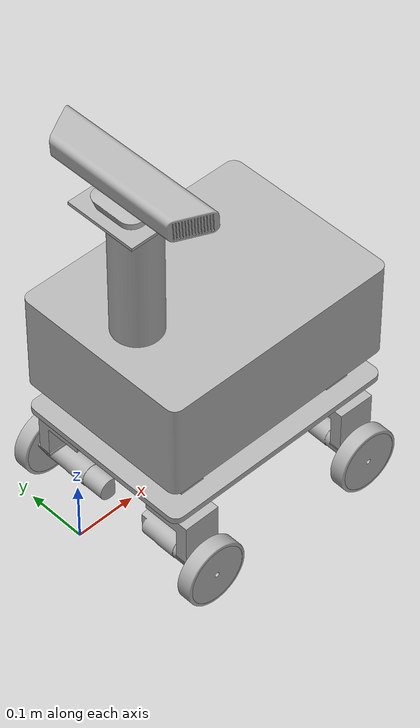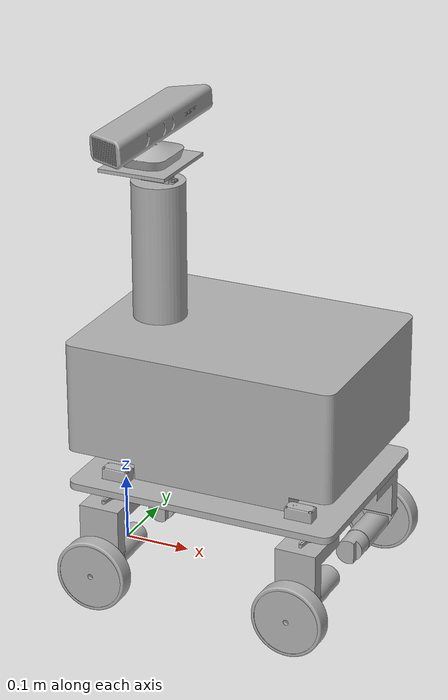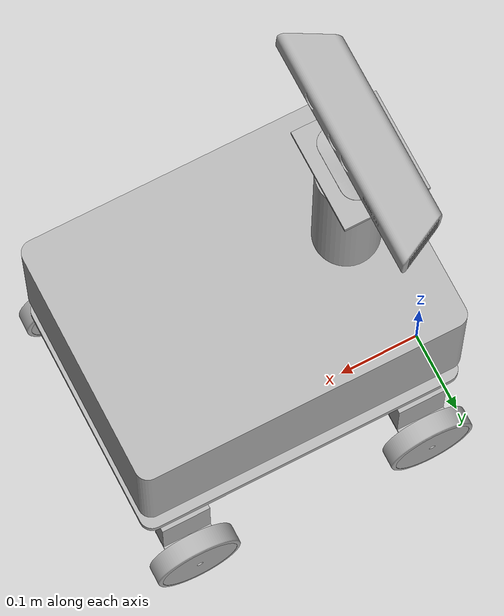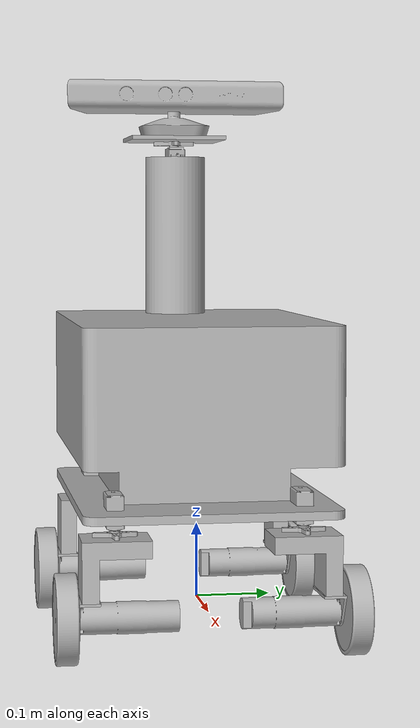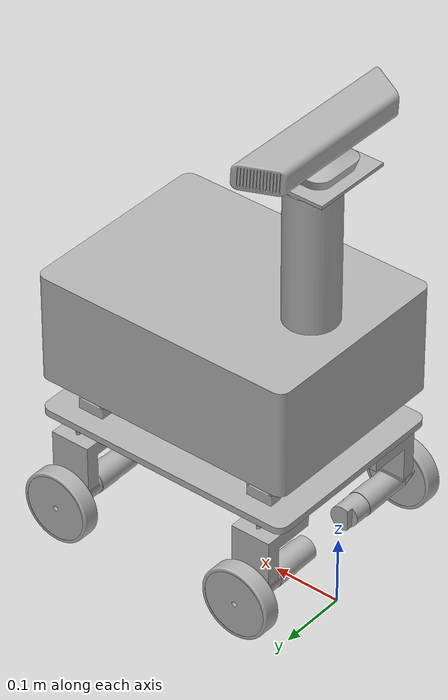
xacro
<?xml version="1.0" ?>
<robot name="trialin1_v1" xmlns:xacro="http://www.ros.org/wiki/xacro">

<xacro:include filename="$(find trialin1_v1_description)/urdf/materials.xacro" />
<xacro:include filename="$(find trialin1_v1_description)/urdf/trialin1_v1.trans" />
<xacro:include filename="$(find trialin1_v1_description)/urdf/trialin1_v1.gazebo" />
<link name="base_link">
  <inertial>
    <origin xyz="0.18896096175364968 -0.04114655378961356 0.3090647094629626" rpy="0 0 0"/>
    <mass value="6.0526001728054935"/>
    <inertia ixx="0.121776" iyy="0.168003" izz="0.153906" ixy="-0.0" iyz="0.0" ixz="0.019067"/>
  </inertial>
  <visual>
    <origin xyz="0 0 0" rpy="0 0 0"/>
    <geometry>
      <mesh filename="file://$(find trialin1_v1_description)/meshes/base_link.stl" scale="0.001 0.001 0.001"/>
    </geometry>
    <material name="silver"/>
  </visual>
  <collision>
    <origin xyz="0 0 0" rpy="0 0 0"/>
    <geometry>
      <mesh filename="file://$(find trialin1_v1_description)/meshes/base_link.stl" scale="0.001 0.001 0.001"/>
    </geometry>
  </collision>
</link>

<link name="DS51_Start_horn_v1_1">
  <inertial>
    <origin xyz="3.0606838966051875e-07 4.462104938735001e-07 -0.0005603508783796896" rpy="0 0 0"/>
    <mass value="0.027770568475082406"/>
    <inertia ixx="3e-06" iyy="3e-06" izz="6e-06" ixy="0.0" iyz="-0.0" ixz="0.0"/>
  </inertial>
  <visual>
    <origin xyz="-0.070706 0.041147 -0.609604" rpy="0 0 0"/>
    <geometry>
      <mesh filename="file://$(find trialin1_v1_description)/meshes/DS51_Start_horn_v1_1.stl" scale="0.001 0.001 0.001"/>
    </geometry>
    <material name="silver"/>
  </visual>
  <collision>
    <origin xyz="-0.070706 0.041147 -0.609604" rpy="0 0 0"/>
    <geometry>
      <mesh filename="file://$(find trialin1_v1_description)/meshes/DS51_Start_horn_v1_1.stl" scale="0.001 0.001 0.001"/>
    </geometry>
  </collision>
</link>

<link name="DS51_Start_horn_v1__2__1">
  <inertial>
    <origin xyz="3.0606839025032473e-07 4.4621027456281936e-07 0.0005606751626139606" rpy="0 0 0"/>
    <mass value="0.027770568475082406"/>
    <inertia ixx="3e-06" iyy="3e-06" izz="6e-06" ixy="0.0" iyz="-0.0" ixz="0.0"/>
  </inertial>
  <visual>
    <origin xyz="-0.056206 0.151147 -0.152335" rpy="0 0 0"/>
    <geometry>
      <mesh filename="file://$(find trialin1_v1_description)/meshes/DS51_Start_horn_v1__2__1.stl" scale="0.001 0.001 0.001"/>
    </geometry>
    <material name="silver"/>
  </visual>
  <collision>
    <origin xyz="-0.056206 0.151147 -0.152335" rpy="0 0 0"/>
    <geometry>
      <mesh filename="file://$(find trialin1_v1_description)/meshes/DS51_Start_horn_v1__2__1.stl" scale="0.001 0.001 0.001"/>
    </geometry>
  </collision>
</link>

<link name="DS51_Start_horn_v1__1__1">
  <inertial>
    <origin xyz="3.060683907429862e-07 4.462102805302681e-07 0.0005606751626143214" rpy="0 0 0"/>
    <mass value="0.027770568475082406"/>
    <inertia ixx="3e-06" iyy="3e-06" izz="6e-06" ixy="0.0" iyz="-0.0" ixz="0.0"/>
  </inertial>
  <visual>
    <origin xyz="-0.356706 0.151147 -0.152335" rpy="0 0 0"/>
    <geometry>
      <mesh filename="file://$(find trialin1_v1_description)/meshes/DS51_Start_horn_v1__1__1.stl" scale="0.001 0.001 0.001"/>
    </geometry>
    <material name="silver"/>
  </visual>
  <collision>
    <origin xyz="-0.356706 0.151147 -0.152335" rpy="0 0 0"/>
    <geometry>
      <mesh filename="file://$(find trialin1_v1_description)/meshes/DS51_Start_horn_v1__1__1.stl" scale="0.001 0.001 0.001"/>
    </geometry>
  </collision>
</link>

<link name="DS51_Start_horn_v1__3__1">
  <inertial>
    <origin xyz="3.0606839068747504e-07 4.462102805302681e-07 0.0005606751626173467" rpy="0 0 0"/>
    <mass value="0.027770568475082406"/>
    <inertia ixx="3e-06" iyy="3e-06" izz="6e-06" ixy="0.0" iyz="-0.0" ixz="0.0"/>
  </inertial>
  <visual>
    <origin xyz="-0.356706 -0.068853 -0.152335" rpy="0 0 0"/>
    <geometry>
      <mesh filename="file://$(find trialin1_v1_description)/meshes/DS51_Start_horn_v1__3__1.stl" scale="0.001 0.001 0.001"/>
    </geometry>
    <material name="silver"/>
  </visual>
  <collision>
    <origin xyz="-0.356706 -0.068853 -0.152335" rpy="0 0 0"/>
    <geometry>
      <mesh filename="file://$(find trialin1_v1_description)/meshes/DS51_Start_horn_v1__3__1.stl" scale="0.001 0.001 0.001"/>
    </geometry>
  </collision>
</link>

<link name="DS51_Start_horn_v1__4__1">
  <inertial>
    <origin xyz="3.060683941638609e-07 4.4621027425750803e-07 0.0005606751626052731" rpy="0 0 0"/>
    <mass value="0.027770568475082406"/>
    <inertia ixx="3e-06" iyy="3e-06" izz="6e-06" ixy="-0.0" iyz="-0.0" ixz="0.0"/>
  </inertial>
  <visual>
    <origin xyz="-0.056206 -0.068853 -0.152335" rpy="0 0 0"/>
    <geometry>
      <mesh filename="file://$(find trialin1_v1_description)/meshes/DS51_Start_horn_v1__4__1.stl" scale="0.001 0.001 0.001"/>
    </geometry>
    <material name="silver"/>
  </visual>
  <collision>
    <origin xyz="-0.056206 -0.068853 -0.152335" rpy="0 0 0"/>
    <geometry>
      <mesh filename="file://$(find trialin1_v1_description)/meshes/DS51_Start_horn_v1__4__1.stl" scale="0.001 0.001 0.001"/>
    </geometry>
  </collision>
</link>

<link name="DUDUKAN_PG_36_3MM_v1__1__1">
  <inertial>
    <origin xyz="3.0606820058259876e-07 -0.006228145545690872 -0.007756847459782917" rpy="0 0 0"/>
    <mass value="0.061802777435238064"/>
    <inertia ixx="1.1e-05" iyy="2.3e-05" izz="2.1e-05" ixy="-0.0" iyz="-3e-06" ixz="-0.0"/>
  </inertial>
  <visual>
    <origin xyz="-0.056206 0.181147 -0.079335" rpy="0 0 0"/>
    <geometry>
      <mesh filename="file://$(find trialin1_v1_description)/meshes/DUDUKAN_PG_36_3MM_v1__1__1.stl" scale="0.001 0.001 0.001"/>
    </geometry>
    <material name="silver"/>
  </visual>
  <collision>
    <origin xyz="-0.056206 0.181147 -0.079335" rpy="0 0 0"/>
    <geometry>
      <mesh filename="file://$(find trialin1_v1_description)/meshes/DUDUKAN_PG_36_3MM_v1__1__1.stl" scale="0.001 0.001 0.001"/>
    </geometry>
  </collision>
</link>

<link name="DUDUKAN_PG_36_3MM_v1_1">
  <inertial>
    <origin xyz="-0.00011289662869412576 -0.006227202210847882 -0.00775684745978282" rpy="0 0 0"/>
    <mass value="0.061802777435238064"/>
    <inertia ixx="1.1e-05" iyy="2.3e-05" izz="2.1e-05" ixy="0.0" iyz="-3e-06" ixz="-0.0"/>
  </inertial>
  <visual>
    <origin xyz="-0.356163 0.181142 -0.079335" rpy="0 0 0"/>
    <geometry>
      <mesh filename="file://$(find trialin1_v1_description)/meshes/DUDUKAN_PG_36_3MM_v1_1.stl" scale="0.001 0.001 0.001"/>
    </geometry>
    <material name="silver"/>
  </visual>
  <collision>
    <origin xyz="-0.356163 0.181142 -0.079335" rpy="0 0 0"/>
    <geometry>
      <mesh filename="file://$(find trialin1_v1_description)/meshes/DUDUKAN_PG_36_3MM_v1_1.stl" scale="0.001 0.001 0.001"/>
    </geometry>
  </collision>
</link>

<link name="DUDUKAN_PG_36_3MM_v1__3__1">
  <inertial>
    <origin xyz="3.060685793698781e-07 0.0062290379664655116 -0.007756847459779476" rpy="0 0 0"/>
    <mass value="0.061802777435238064"/>
    <inertia ixx="1.1e-05" iyy="2.3e-05" izz="2.1e-05" ixy="-0.0" iyz="3e-06" ixz="0.0"/>
  </inertial>
  <visual>
    <origin xyz="-0.356706 -0.098853 -0.079335" rpy="0 0 0"/>
    <geometry>
      <mesh filename="file://$(find trialin1_v1_description)/meshes/DUDUKAN_PG_36_3MM_v1__3__1.stl" scale="0.001 0.001 0.001"/>
    </geometry>
    <material name="silver"/>
  </visual>
  <collision>
    <origin xyz="-0.356706 -0.098853 -0.079335" rpy="0 0 0"/>
    <geometry>
      <mesh filename="file://$(find trialin1_v1_description)/meshes/DUDUKAN_PG_36_3MM_v1__3__1.stl" scale="0.001 0.001 0.001"/>
    </geometry>
  </collision>
</link>

<link name="DUDUKAN_PG_36_3MM_v1__2__1">
  <inertial>
    <origin xyz="3.060685835679089e-07 0.00622903796645928 -0.007756847459791466" rpy="0 0 0"/>
    <mass value="0.061802777435238064"/>
    <inertia ixx="1.1e-05" iyy="2.3e-05" izz="2.1e-05" ixy="-0.0" iyz="3e-06" ixz="0.0"/>
  </inertial>
  <visual>
    <origin xyz="-0.056206 -0.098853 -0.079335" rpy="0 0 0"/>
    <geometry>
      <mesh filename="file://$(find trialin1_v1_description)/meshes/DUDUKAN_PG_36_3MM_v1__2__1.stl" scale="0.001 0.001 0.001"/>
    </geometry>
    <material name="silver"/>
  </visual>
  <collision>
    <origin xyz="-0.056206 -0.098853 -0.079335" rpy="0 0 0"/>
    <geometry>
      <mesh filename="file://$(find trialin1_v1_description)/meshes/DUDUKAN_PG_36_3MM_v1__2__1.stl" scale="0.001 0.001 0.001"/>
    </geometry>
  </collision>
</link>

<link name="PG36_v1__1__1">
  <inertial>
    <origin xyz="-0.3255143802238116 0.013934666985547267 -0.21564006858619356" rpy="0 0 0"/>
    <mass value="0.10249318991736163"/>
    <inertia ixx="0.000109" iyy="1.8e-05" izz="0.000109" ixy="-3e-06" iyz="0.0" ixz="-0.0"/>
  </inertial>
  <visual>
    <origin xyz="-0.682822 0.145218 -0.271975" rpy="0 0 0"/>
    <geometry>
      <mesh filename="file://$(find trialin1_v1_description)/meshes/PG36_v1__1__1.stl" scale="0.001 0.001 0.001"/>
    </geometry>
    <material name="silver"/>
  </visual>
  <collision>
    <origin xyz="-0.682822 0.145218 -0.271975" rpy="0 0 0"/>
    <geometry>
      <mesh filename="file://$(find trialin1_v1_description)/meshes/PG36_v1__1__1.stl" scale="0.001 0.001 0.001"/>
    </geometry>
  </collision>
</link>

<link name="PG36_v1_1">
  <inertial>
    <origin xyz="-0.02596525821570679 0.007036299904497778 -0.21864606858619356" rpy="0 0 0"/>
    <mass value="0.10249318991736163"/>
    <inertia ixx="0.000109" iyy="1.8e-05" izz="0.000109" ixy="-1e-06" iyz="0.0" ixz="-0.0"/>
  </inertial>
  <visual>
    <origin xyz="-0.082413 0.139312 -0.274981" rpy="0 0 0"/>
    <geometry>
      <mesh filename="file://$(find trialin1_v1_description)/meshes/PG36_v1_1.stl" scale="0.001 0.001 0.001"/>
    </geometry>
    <material name="silver"/>
  </visual>
  <collision>
    <origin xyz="-0.082413 0.139312 -0.274981" rpy="0 0 0"/>
    <geometry>
      <mesh filename="file://$(find trialin1_v1_description)/meshes/PG36_v1_1.stl" scale="0.001 0.001 0.001"/>
    </geometry>
  </collision>
</link>

<link name="PG36_v1__3__1">
  <inertial>
    <origin xyz="0.3264648703524815 -0.008036407483723737 0.08735393141380987" rpy="0 0 0"/>
    <mass value="0.10249318991736163"/>
    <inertia ixx="0.000109" iyy="1.8e-05" izz="0.000109" ixy="-1e-06" iyz="-0.0" ixz="0.0"/>
  </inertial>
  <visual>
    <origin xyz="-0.03 -0.057019 0.031019" rpy="0 0 0"/>
    <geometry>
      <mesh filename="file://$(find trialin1_v1_description)/meshes/PG36_v1__3__1.stl" scale="0.001 0.001 0.001"/>
    </geometry>
    <material name="silver"/>
  </visual>
  <collision>
    <origin xyz="-0.03 -0.057019 0.031019" rpy="0 0 0"/>
    <geometry>
      <mesh filename="file://$(find trialin1_v1_description)/meshes/PG36_v1__3__1.stl" scale="0.001 0.001 0.001"/>
    </geometry>
  </collision>
</link>

<link name="PG36_v1__2__1">
  <inertial>
    <origin xyz="0.025964870352484175 -0.008036407483730024 0.08735393141379784" rpy="0 0 0"/>
    <mass value="0.10249318991736163"/>
    <inertia ixx="0.000109" iyy="1.8e-05" izz="0.000109" ixy="-1e-06" iyz="-0.0" ixz="0.0"/>
  </inertial>
  <visual>
    <origin xyz="-0.03 -0.057019 0.031019" rpy="0 0 0"/>
    <geometry>
      <mesh filename="file://$(find trialin1_v1_description)/meshes/PG36_v1__2__1.stl" scale="0.001 0.001 0.001"/>
    </geometry>
    <material name="silver"/>
  </visual>
  <collision>
    <origin xyz="-0.03 -0.057019 0.031019" rpy="0 0 0"/>
    <geometry>
      <mesh filename="file://$(find trialin1_v1_description)/meshes/PG36_v1__2__1.stl" scale="0.001 0.001 0.001"/>
    </geometry>
  </collision>
</link>

<link name="Steering_Depan_Kanan_1">
  <inertial>
    <origin xyz="-0.00020868824280145803 -0.01153612243251434 -0.023461607047734895" rpy="0 0 0"/>
    <mass value="1.2246"/>
    <inertia ixx="0.001157" iyy="0.000846" izz="0.001046" ixy="-6e-06" iyz="-0.000304" ixz="-6e-06"/>
  </inertial>
  <visual>
    <origin xyz="-0.356706 0.151147 -0.149335" rpy="0 0 0"/>
    <geometry>
      <mesh filename="file://$(find trialin1_v1_description)/meshes/Steering_Depan_Kanan_1.stl" scale="0.001 0.001 0.001"/>
    </geometry>
    <material name="silver"/>
  </visual>
  <collision>
    <origin xyz="-0.356706 0.151147 -0.149335" rpy="0 0 0"/>
    <geometry>
      <mesh filename="file://$(find trialin1_v1_description)/meshes/Steering_Depan_Kanan_1.stl" scale="0.001 0.001 0.001"/>
    </geometry>
  </collision>
</link>

<link name="Steering_Belakang_Kanan_1">
  <inertial>
    <origin xyz="3.060683904862471e-07 -0.011538015328077467 -0.023461607047735256" rpy="0 0 0"/>
    <mass value="1.2246"/>
    <inertia ixx="0.001157" iyy="0.000846" izz="0.001046" ixy="0.0" iyz="-0.000304" ixz="0.0"/>
  </inertial>
  <visual>
    <origin xyz="-0.056206 0.151147 -0.149335" rpy="0 0 0"/>
    <geometry>
      <mesh filename="file://$(find trialin1_v1_description)/meshes/Steering_Belakang_Kanan_1.stl" scale="0.001 0.001 0.001"/>
    </geometry>
    <material name="silver"/>
  </visual>
  <collision>
    <origin xyz="-0.056206 0.151147 -0.149335" rpy="0 0 0"/>
    <geometry>
      <mesh filename="file://$(find trialin1_v1_description)/meshes/Steering_Belakang_Kanan_1.stl" scale="0.001 0.001 0.001"/>
    </geometry>
  </collision>
</link>

<link name="Steering_Depan_Kiri_1">
  <inertial>
    <origin xyz="3.06068390298897e-07 0.011538907748851662 -0.02346160704773176" rpy="0 0 0"/>
    <mass value="1.2246"/>
    <inertia ixx="0.001157" iyy="0.000846" izz="0.001046" ixy="0.0" iyz="0.000304" ixz="-0.0"/>
  </inertial>
  <visual>
    <origin xyz="-0.356706 -0.068853 -0.149335" rpy="0 0 0"/>
    <geometry>
      <mesh filename="file://$(find trialin1_v1_description)/meshes/Steering_Depan_Kiri_1.stl" scale="0.001 0.001 0.001"/>
    </geometry>
    <material name="silver"/>
  </visual>
  <collision>
    <origin xyz="-0.356706 -0.068853 -0.149335" rpy="0 0 0"/>
    <geometry>
      <mesh filename="file://$(find trialin1_v1_description)/meshes/Steering_Depan_Kiri_1.stl" scale="0.001 0.001 0.001"/>
    </geometry>
  </collision>
</link>

<link name="Steering_Belakang_Kiri_1">
  <inertial>
    <origin xyz="3.060683939071218e-07 0.011538907748845473 -0.02346160704774375" rpy="0 0 0"/>
    <mass value="1.2246"/>
    <inertia ixx="0.001157" iyy="0.000846" izz="0.001046" ixy="0.0" iyz="0.000304" ixz="-0.0"/>
  </inertial>
  <visual>
    <origin xyz="-0.056206 -0.068853 -0.149335" rpy="0 0 0"/>
    <geometry>
      <mesh filename="file://$(find trialin1_v1_description)/meshes/Steering_Belakang_Kiri_1.stl" scale="0.001 0.001 0.001"/>
    </geometry>
    <material name="silver"/>
  </visual>
  <collision>
    <origin xyz="-0.056206 -0.068853 -0.149335" rpy="0 0 0"/>
    <geometry>
      <mesh filename="file://$(find trialin1_v1_description)/meshes/Steering_Belakang_Kiri_1.stl" scale="0.001 0.001 0.001"/>
    </geometry>
  </collision>
</link>

<link name="Rubber_v1_1">
  <inertial>
    <origin xyz="-0.05620669393160828 0.044334446210383655 0.21864693141380298" rpy="0 0 0"/>
    <mass value="0.5258145099128054"/>
    <inertia ixx="0.000629" iyy="0.001211" izz="0.000629" ixy="-0.0" iyz="0.0" ixz="-0.0"/>
  </inertial>
  <visual>
    <origin xyz="-0.112413 0.252981 0.162312" rpy="0 0 0"/>
    <geometry>
      <mesh filename="file://$(find trialin1_v1_description)/meshes/Rubber_v1_1.stl" scale="0.001 0.001 0.001"/>
    </geometry>
    <material name="silver"/>
  </visual>
  <collision>
    <origin xyz="-0.112413 0.252981 0.162312" rpy="0 0 0"/>
    <geometry>
      <mesh filename="file://$(find trialin1_v1_description)/meshes/Rubber_v1_1.stl" scale="0.001 0.001 0.001"/>
    </geometry>
  </collision>
</link>

<link name="Rubber_v1__1__1">
  <inertial>
    <origin xyz="-0.3567066939316114 0.04433444621039019 -0.13835306858619356" rpy="0 0 0"/>
    <mass value="0.5258145099128054"/>
    <inertia ixx="0.000629" iyy="0.001211" izz="0.000629" ixy="-0.0" iyz="0.0" ixz="-0.0"/>
  </inertial>
  <visual>
    <origin xyz="-0.713413 -0.084019 -0.194688" rpy="0 0 0"/>
    <geometry>
      <mesh filename="file://$(find trialin1_v1_description)/meshes/Rubber_v1__1__1.stl" scale="0.001 0.001 0.001"/>
    </geometry>
    <material name="silver"/>
  </visual>
  <collision>
    <origin xyz="-0.713413 -0.084019 -0.194688" rpy="0 0 0"/>
    <geometry>
      <mesh filename="file://$(find trialin1_v1_description)/meshes/Rubber_v1__1__1.stl" scale="0.001 0.001 0.001"/>
    </geometry>
  </collision>
</link>

<link name="Rubber_v1__2__1">
  <inertial>
    <origin xyz="-0.35500306940874937 0.050773715088969246 0.19763893141380318" rpy="0 0 0"/>
    <mass value="0.5258145099128054"/>
    <inertia ixx="0.000629" iyy="0.001211" izz="0.000629" ixy="1.1e-05" iyz="0.0" ixz="-0.0"/>
  </inertial>
  <visual>
    <origin xyz="-0.710686 0.258411 0.141304" rpy="0 0 0"/>
    <geometry>
      <mesh filename="file://$(find trialin1_v1_description)/meshes/Rubber_v1__2__1.stl" scale="0.001 0.001 0.001"/>
    </geometry>
    <material name="silver"/>
  </visual>
  <collision>
    <origin xyz="-0.710686 0.258411 0.141304" rpy="0 0 0"/>
    <geometry>
      <mesh filename="file://$(find trialin1_v1_description)/meshes/Rubber_v1__2__1.stl" scale="0.001 0.001 0.001"/>
    </geometry>
  </collision>
</link>

<link name="Rubber_v1__3__1">
  <inertial>
    <origin xyz="-0.05620669393160612 0.04433444621038353 -0.13835306858620552" rpy="0 0 0"/>
    <mass value="0.5258145099128054"/>
    <inertia ixx="0.000629" iyy="0.001211" izz="0.000629" ixy="-0.0" iyz="0.0" ixz="-0.0"/>
  </inertial>
  <visual>
    <origin xyz="-0.112413 -0.084019 -0.194688" rpy="0 0 0"/>
    <geometry>
      <mesh filename="file://$(find trialin1_v1_description)/meshes/Rubber_v1__3__1.stl" scale="0.001 0.001 0.001"/>
    </geometry>
    <material name="silver"/>
  </visual>
  <collision>
    <origin xyz="-0.112413 -0.084019 -0.194688" rpy="0 0 0"/>
    <geometry>
      <mesh filename="file://$(find trialin1_v1_description)/meshes/Rubber_v1__3__1.stl" scale="0.001 0.001 0.001"/>
    </geometry>
  </collision>
</link>

<link name="Kiri_Belakang_1">
  <inertial>
    <origin xyz="0.056206306068397466 -0.038034553789616815 -0.12135306858620559" rpy="0 0 0"/>
    <mass value="1.1039968133352154"/>
    <inertia ixx="0.000584" iyy="0.001056" izz="0.000584" ixy="-0.0" iyz="-0.0" ixz="-0.0"/>
  </inertial>
  <visual>
    <origin xyz="-0.0 -0.166388 -0.177688" rpy="0 0 0"/>
    <geometry>
      <mesh filename="file://$(find trialin1_v1_description)/meshes/Kiri_Belakang_1.stl" scale="0.001 0.001 0.001"/>
    </geometry>
    <material name="silver"/>
  </visual>
  <collision>
    <origin xyz="-0.0 -0.166388 -0.177688" rpy="0 0 0"/>
    <geometry>
      <mesh filename="file://$(find trialin1_v1_description)/meshes/Kiri_Belakang_1.stl" scale="0.001 0.001 0.001"/>
    </geometry>
  </collision>
</link>

<link name="Kiri_Depan_1">
  <inertial>
    <origin xyz="0.35670630606839226 -0.03803455378961024 -0.12135306858619352" rpy="0 0 0"/>
    <mass value="1.1039968133352154"/>
    <inertia ixx="0.000584" iyy="0.001056" izz="0.000584" ixy="-0.0" iyz="0.0" ixz="0.0"/>
  </inertial>
  <visual>
    <origin xyz="-0.0 -0.166388 -0.177688" rpy="0 0 0"/>
    <geometry>
      <mesh filename="file://$(find trialin1_v1_description)/meshes/Kiri_Depan_1.stl" scale="0.001 0.001 0.001"/>
    </geometry>
    <material name="silver"/>
  </visual>
  <collision>
    <origin xyz="-0.0 -0.166388 -0.177688" rpy="0 0 0"/>
    <geometry>
      <mesh filename="file://$(find trialin1_v1_description)/meshes/Kiri_Depan_1.stl" scale="0.001 0.001 0.001"/>
    </geometry>
  </collision>
</link>

<link name="Kanan_Depan_1">
  <inertial>
    <origin xyz="-0.35495406940874574 0.04747171508896875 0.20363793141380307" rpy="0 0 0"/>
    <mass value="1.1039968133352154"/>
    <inertia ixx="0.000584" iyy="0.001055" izz="0.000584" ixy="9e-06" iyz="0.0" ixz="-0.0"/>
  </inertial>
  <visual>
    <origin xyz="-0.710637 0.255109 0.147303" rpy="0 0 0"/>
    <geometry>
      <mesh filename="file://$(find trialin1_v1_description)/meshes/Kanan_Depan_1.stl" scale="0.001 0.001 0.001"/>
    </geometry>
    <material name="silver"/>
  </visual>
  <collision>
    <origin xyz="-0.710637 0.255109 0.147303" rpy="0 0 0"/>
    <geometry>
      <mesh filename="file://$(find trialin1_v1_description)/meshes/Kanan_Depan_1.stl" scale="0.001 0.001 0.001"/>
    </geometry>
  </collision>
</link>

<link name="Kanan_Belakang_1">
  <inertial>
    <origin xyz="-0.056206693931604705 0.04103444621038416 0.20464693141380302" rpy="0 0 0"/>
    <mass value="1.1039968133352154"/>
    <inertia ixx="0.000584" iyy="0.001056" izz="0.000584" ixy="-0.0" iyz="0.0" ixz="-0.0"/>
  </inertial>
  <visual>
    <origin xyz="-0.112413 0.249681 0.148312" rpy="0 0 0"/>
    <geometry>
      <mesh filename="file://$(find trialin1_v1_description)/meshes/Kanan_Belakang_1.stl" scale="0.001 0.001 0.001"/>
    </geometry>
    <material name="silver"/>
  </visual>
  <collision>
    <origin xyz="-0.112413 0.249681 0.148312" rpy="0 0 0"/>
    <geometry>
      <mesh filename="file://$(find trialin1_v1_description)/meshes/Kanan_Belakang_1.stl" scale="0.001 0.001 0.001"/>
    </geometry>
  </collision>
</link>

<link name="ArahKinect_1">
  <inertial>
    <origin xyz="3.0606838963276317e-07 4.4621038429448756e-07 0.002500392870431134" rpy="0 0 0"/>
    <mass value="0.471"/>
    <inertia ixx="0.000566" iyy="0.000393" izz="0.000958" ixy="0.0" iyz="-0.0" ixz="0.0"/>
  </inertial>
  <visual>
    <origin xyz="-0.070706 0.041147 -0.612604" rpy="0 0 0"/>
    <geometry>
      <mesh filename="file://$(find trialin1_v1_description)/meshes/ArahKinect_1.stl" scale="0.001 0.001 0.001"/>
    </geometry>
    <material name="silver"/>
  </visual>
  <collision>
    <origin xyz="-0.070706 0.041147 -0.612604" rpy="0 0 0"/>
    <geometry>
      <mesh filename="file://$(find trialin1_v1_description)/meshes/ArahKinect_1.stl" scale="0.001 0.001 0.001"/>
    </geometry>
  </collision>
</link>

<link name="Servo_v1__4__1">
  <inertial>
    <origin xyz="-0.00022596133209949743 4.507602307246561e-07 0.019952559069018272" rpy="0 0 0"/>
    <mass value="0.25233806594972435"/>
    <inertia ixx="4.1e-05" iyy="6.8e-05" izz="4.3e-05" ixy="0.0" iyz="-0.0" ixz="1e-06"/>
  </inertial>
  <visual>
    <origin xyz="-0.081456 0.041147 -0.564185" rpy="0 0 0"/>
    <geometry>
      <mesh filename="file://$(find trialin1_v1_description)/meshes/Servo_v1__4__1.stl" scale="0.001 0.001 0.001"/>
    </geometry>
    <material name="silver"/>
  </visual>
  <collision>
    <origin xyz="-0.081456 0.041147 -0.564185" rpy="0 0 0"/>
    <geometry>
      <mesh filename="file://$(find trialin1_v1_description)/meshes/Servo_v1__4__1.stl" scale="0.001 0.001 0.001"/>
    </geometry>
  </collision>
</link>

<link name="Sense_Kinect_v1_1">
  <inertial>
    <origin xyz="-0.002250087188308769 4.566813827325267e-05 0.04507447484105365" rpy="0 0 0"/>
    <mass value="5.170546565587239"/>
    <inertia ixx="0.024597" iyy="0.003275" izz="0.024429" ixy="-7e-06" iyz="-3e-06" ixz="2.8e-05"/>
  </inertial>
  <visual>
    <origin xyz="-0.070706 0.041147 -0.617604" rpy="0 0 0"/>
    <geometry>
      <mesh filename="file://$(find trialin1_v1_description)/meshes/Sense_Kinect_v1_1.stl" scale="0.001 0.001 0.001"/>
    </geometry>
    <material name="silver"/>
  </visual>
  <collision>
    <origin xyz="-0.070706 0.041147 -0.617604" rpy="0 0 0"/>
    <geometry>
      <mesh filename="file://$(find trialin1_v1_description)/meshes/Sense_Kinect_v1_1.stl" scale="0.001 0.001 0.001"/>
    </geometry>
  </collision>
</link>

<link name="Servo_v1__1__1">
  <inertial>
    <origin xyz="-0.2066829613321018 0.031146441660537615 -0.16898769624141283" rpy="0 0 0"/>
    <mass value="0.25233806594972435"/>
    <inertia ixx="4.1e-05" iyy="6.8e-05" izz="4.3e-05" ixy="-0.0" iyz="-0.0" ixz="-1e-06"/>
  </inertial>
  <visual>
    <origin xyz="-0.273413 -0.037707 -0.34757" rpy="0 0 0"/>
    <geometry>
      <mesh filename="file://$(find trialin1_v1_description)/meshes/Servo_v1__1__1.stl" scale="0.001 0.001 0.001"/>
    </geometry>
    <material name="silver"/>
  </visual>
  <collision>
    <origin xyz="-0.273413 -0.037707 -0.34757" rpy="0 0 0"/>
    <geometry>
      <mesh filename="file://$(find trialin1_v1_description)/meshes/Servo_v1__1__1.stl" scale="0.001 0.001 0.001"/>
    </geometry>
  </collision>
</link>

<link name="Servo_v1__2__1">
  <inertial>
    <origin xyz="-0.20623042653112394 0.031146450760235443 -0.1689876962414131" rpy="0 0 0"/>
    <mass value="0.25233806594972435"/>
    <inertia ixx="4.1e-05" iyy="6.8e-05" izz="4.3e-05" ixy="-0.0" iyz="0.0" ixz="1e-06"/>
  </inertial>
  <visual>
    <origin xyz="-0.552413 -0.037707 -0.34757" rpy="0 0 0"/>
    <geometry>
      <mesh filename="file://$(find trialin1_v1_description)/meshes/Servo_v1__2__1.stl" scale="0.001 0.001 0.001"/>
    </geometry>
    <material name="silver"/>
  </visual>
  <collision>
    <origin xyz="-0.552413 -0.037707 -0.34757" rpy="0 0 0"/>
    <geometry>
      <mesh filename="file://$(find trialin1_v1_description)/meshes/Servo_v1__2__1.stl" scale="0.001 0.001 0.001"/>
    </geometry>
  </collision>
</link>

<link name="Servo_v1__3__1">
  <inertial>
    <origin xyz="-0.20623042653112023 0.05114645076023602 -0.16898769624141308" rpy="0 0 0"/>
    <mass value="0.25233806594972435"/>
    <inertia ixx="4.1e-05" iyy="6.8e-05" izz="4.3e-05" ixy="-0.0" iyz="0.0" ixz="1e-06"/>
  </inertial>
  <visual>
    <origin xyz="-0.552413 0.202293 -0.34757" rpy="0 0 0"/>
    <geometry>
      <mesh filename="file://$(find trialin1_v1_description)/meshes/Servo_v1__3__1.stl" scale="0.001 0.001 0.001"/>
    </geometry>
    <material name="silver"/>
  </visual>
  <collision>
    <origin xyz="-0.552413 0.202293 -0.34757" rpy="0 0 0"/>
    <geometry>
      <mesh filename="file://$(find trialin1_v1_description)/meshes/Servo_v1__3__1.stl" scale="0.001 0.001 0.001"/>
    </geometry>
  </collision>
</link>

<link name="Servo_v1_1">
  <inertial>
    <origin xyz="-0.20668296133209763 0.05114644166053833 -0.16898769624141272" rpy="0 0 0"/>
    <mass value="0.25233806594972435"/>
    <inertia ixx="4.1e-05" iyy="6.8e-05" izz="4.3e-05" ixy="-0.0" iyz="-0.0" ixz="-1e-06"/>
  </inertial>
  <visual>
    <origin xyz="-0.273413 0.202293 -0.34757" rpy="0 0 0"/>
    <geometry>
      <mesh filename="file://$(find trialin1_v1_description)/meshes/Servo_v1_1.stl" scale="0.001 0.001 0.001"/>
    </geometry>
    <material name="silver"/>
  </visual>
  <collision>
    <origin xyz="-0.273413 0.202293 -0.34757" rpy="0 0 0"/>
    <geometry>
      <mesh filename="file://$(find trialin1_v1_description)/meshes/Servo_v1_1.stl" scale="0.001 0.001 0.001"/>
    </geometry>
  </collision>
</link>

<joint name="Rigid 6" type="fixed">
  <origin xyz="-0.01075 0.0 0.045419" rpy="0 0 0"/>
  <parent link="Servo_v1__4__1"/>
  <child link="DS51_Start_horn_v1_1"/>
</joint>

<joint name="Rigid 7" type="fixed">
  <origin xyz="-0.217207 0.051146 -0.195235" rpy="0 0 0"/>
  <parent link="Servo_v1_1"/>
  <child link="DS51_Start_horn_v1__2__1"/>
</joint>

<joint name="Rigid 8" type="fixed">
  <origin xyz="-0.195707 0.051146 -0.195235" rpy="0 0 0"/>
  <parent link="Servo_v1__3__1"/>
  <child link="DS51_Start_horn_v1__1__1"/>
</joint>

<joint name="Rigid 9" type="fixed">
  <origin xyz="-0.195707 0.031146 -0.195235" rpy="0 0 0"/>
  <parent link="Servo_v1__2__1"/>
  <child link="DS51_Start_horn_v1__3__1"/>
</joint>

<joint name="Rigid 10" type="fixed">
  <origin xyz="-0.217207 0.031146 -0.195235" rpy="0 0 0"/>
  <parent link="Servo_v1__1__1"/>
  <child link="DS51_Start_horn_v1__4__1"/>
</joint>

<joint name="Rigid 26" type="fixed">
  <origin xyz="0.0 -0.03 -0.07" rpy="0 0 0"/>
  <parent link="Steering_Belakang_Kanan_1"/>
  <child link="DUDUKAN_PG_36_3MM_v1__1__1"/>
</joint>

<joint name="Rigid 27" type="fixed">
  <origin xyz="-0.000543 -0.029995 -0.07" rpy="0 0 0"/>
  <parent link="Steering_Depan_Kanan_1"/>
  <child link="DUDUKAN_PG_36_3MM_v1_1"/>
</joint>

<joint name="Rigid 28" type="fixed">
  <origin xyz="0.0 0.03 -0.07" rpy="0 0 0"/>
  <parent link="Steering_Depan_Kiri_1"/>
  <child link="DUDUKAN_PG_36_3MM_v1__3__1"/>
</joint>

<joint name="Rigid 29" type="fixed">
  <origin xyz="0.0 0.03 -0.07" rpy="0 0 0"/>
  <parent link="Steering_Belakang_Kiri_1"/>
  <child link="DUDUKAN_PG_36_3MM_v1__2__1"/>
</joint>

<joint name="Rigid 30" type="fixed">
  <origin xyz="0.326659 0.035924 0.19264" rpy="0 0 0"/>
  <parent link="DUDUKAN_PG_36_3MM_v1_1"/>
  <child link="PG36_v1__1__1"/>
</joint>

<joint name="Rigid 31" type="fixed">
  <origin xyz="0.026207 0.041835 0.195646" rpy="0 0 0"/>
  <parent link="DUDUKAN_PG_36_3MM_v1__1__1"/>
  <child link="PG36_v1_1"/>
</joint>

<joint name="Rigid 32" type="fixed">
  <origin xyz="-0.326706 -0.041834 -0.110354" rpy="0 0 0"/>
  <parent link="DUDUKAN_PG_36_3MM_v1__3__1"/>
  <child link="PG36_v1__3__1"/>
</joint>

<joint name="Rigid 33" type="fixed">
  <origin xyz="-0.026206 -0.041834 -0.110354" rpy="0 0 0"/>
  <parent link="DUDUKAN_PG_36_3MM_v1__2__1"/>
  <child link="PG36_v1__2__1"/>
</joint>

<joint name="Revolute 34" type="revolute">
  <origin xyz="0.0 0.0 -0.003" rpy="0 0 0"/>
  <parent link="DS51_Start_horn_v1__1__1"/>
  <child link="Steering_Depan_Kanan_1"/>
  <axis xyz="-0.0 -0.0 -1.0"/>
  <limit upper="1.570796" lower="-1.570796" effort="100" velocity="100"/>
</joint>

<joint name="Revolute 35" type="revolute">
  <origin xyz="0.0 0.0 -0.003" rpy="0 0 0"/>
  <parent link="DS51_Start_horn_v1__2__1"/>
  <child link="Steering_Belakang_Kanan_1"/>
  <axis xyz="-0.0 -0.0 -1.0"/>
  <limit upper="1.570796" lower="-1.570796" effort="100" velocity="100"/>
</joint>

<joint name="Revolute 36" type="revolute">
  <origin xyz="0.0 0.0 -0.003" rpy="0 0 0"/>
  <parent link="DS51_Start_horn_v1__3__1"/>
  <child link="Steering_Depan_Kiri_1"/>
  <axis xyz="-0.0 -0.0 -1.0"/>
  <limit upper="1.570796" lower="-1.570796" effort="100" velocity="100"/>
</joint>

<joint name="Revolute 37" type="revolute">
  <origin xyz="0.0 0.0 -0.003" rpy="0 0 0"/>
  <parent link="DS51_Start_horn_v1__4__1"/>
  <child link="Steering_Belakang_Kiri_1"/>
  <axis xyz="-0.0 -0.0 -1.0"/>
  <limit upper="1.570796" lower="-1.570796" effort="100" velocity="100"/>
</joint>

<joint name="Rigid 38" type="fixed">
  <origin xyz="0.0 -0.0033 -0.014" rpy="0 0 0"/>
  <parent link="Kanan_Belakang_1"/>
  <child link="Rubber_v1_1"/>
</joint>

<joint name="Rigid 39" type="fixed">
  <origin xyz="0.713413 -0.082369 0.017" rpy="0 0 0"/>
  <parent link="Kiri_Depan_1"/>
  <child link="Rubber_v1__1__1"/>
</joint>

<joint name="Rigid 40" type="fixed">
  <origin xyz="4.9e-05 -0.003302 0.005999" rpy="0 0 0"/>
  <parent link="Kanan_Depan_1"/>
  <child link="Rubber_v1__2__1"/>
</joint>

<joint name="Rigid 41" type="fixed">
  <origin xyz="0.112413 -0.082369 0.017" rpy="0 0 0"/>
  <parent link="Kiri_Belakang_1"/>
  <child link="Rubber_v1__3__1"/>
</joint>

<joint name="Revolute 42" type="continuous">
  <origin xyz="-0.03 0.109369 0.208707" rpy="0 0 0"/>
  <parent link="PG36_v1__2__1"/>
  <child link="Kiri_Belakang_1"/>
  <axis xyz="0.0 1.0 -0.0"/>
</joint>

<joint name="Revolute 43" type="continuous">
  <origin xyz="-0.03 0.109369 0.208707" rpy="0 0 0"/>
  <parent link="PG36_v1__3__1"/>
  <child link="Kiri_Depan_1"/>
  <axis xyz="0.0 1.0 -0.0"/>
</joint>

<joint name="Revolute 44" type="continuous">
  <origin xyz="0.027815 -0.109891 -0.419278" rpy="0 0 0"/>
  <parent link="PG36_v1__1__1"/>
  <child link="Kanan_Depan_1"/>
  <axis xyz="-0.018113 -0.999836 0.0"/>
</joint>

<joint name="Revolute 45" type="continuous">
  <origin xyz="0.03 -0.110369 -0.423293" rpy="0 0 0"/>
  <parent link="PG36_v1_1"/>
  <child link="Kanan_Belakang_1"/>
  <axis xyz="0.0 -1.0 0.0"/>
</joint>

<joint name="Revolute 46" type="revolute">
  <origin xyz="0.0 0.0 0.003" rpy="0 0 0"/>
  <parent link="DS51_Start_horn_v1_1"/>
  <child link="ArahKinect_1"/>
  <axis xyz="0.0 0.0 1.0"/>
  <limit upper="1.570796" lower="-1.570796" effort="100" velocity="100"/>
</joint>

<joint name="Rigid 52" type="fixed">
  <origin xyz="0.081456 -0.041147 0.564185" rpy="0 0 0"/>
  <parent link="base_link"/>
  <child link="Servo_v1__4__1"/>
</joint>

<joint name="Rigid 53" type="fixed">
  <origin xyz="0.0 0.0 0.005" rpy="0 0 0"/>
  <parent link="ArahKinect_1"/>
  <child link="Sense_Kinect_v1_1"/>
</joint>

<joint name="Rigid 54" type="fixed">
  <origin xyz="0.273413 0.037707 0.34757" rpy="0 0 0"/>
  <parent link="base_link"/>
  <child link="Servo_v1__1__1"/>
</joint>

<joint name="Rigid 55" type="fixed">
  <origin xyz="0.552413 0.037707 0.34757" rpy="0 0 0"/>
  <parent link="base_link"/>
  <child link="Servo_v1__2__1"/>
</joint>

<joint name="Rigid 56" type="fixed">
  <origin xyz="0.552413 -0.202293 0.34757" rpy="0 0 0"/>
  <parent link="base_link"/>
  <child link="Servo_v1__3__1"/>
</joint>

<joint name="Rigid 57" type="fixed">
  <origin xyz="0.273413 -0.202293 0.34757" rpy="0 0 0"/>
  <parent link="base_link"/>
  <child link="Servo_v1_1"/>
</joint>

</robot>

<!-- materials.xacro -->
<robot name="trialin1_v1" xmlns:xacro="http://www.ros.org/wiki/xacro" >

<material name="silver">
  <color rgba="0.700 0.700 0.700 1.000"/>
</material>

</robot>

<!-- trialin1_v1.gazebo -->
<robot name="trialin1_v1" xmlns:xacro="http://www.ros.org/wiki/xacro" >

<xacro:property name="body_color" value="Gazebo/Silver" />

<gazebo>
  <plugin name="control" filename="libgazebo_ros_control.so"/>
</gazebo>
<gazebo reference="base_link">
  <material>${body_color}</material>
  <mu1>0.2</mu1>
  <mu2>0.2</mu2>
  <self_collide>true</self_collide>
  <gravity>true</gravity>
</gazebo>

<gazebo reference="DS51_Start_horn_v1_1">
  <material>${body_color}</material>
  <mu1>0.2</mu1>
  <mu2>0.2</mu2>
  <self_collide>true</self_collide>
</gazebo>

<gazebo reference="DS51_Start_horn_v1__2__1">
  <material>${body_color}</material>
  <mu1>0.2</mu1>
  <mu2>0.2</mu2>
  <self_collide>true</self_collide>
</gazebo>

<gazebo reference="DS51_Start_horn_v1__1__1">
  <material>${body_color}</material>
  <mu1>0.2</mu1>
  <mu2>0.2</mu2>
  <self_collide>true</self_collide>
</gazebo>

<gazebo reference="DS51_Start_horn_v1__3__1">
  <material>${body_color}</material>
  <mu1>0.2</mu1>
  <mu2>0.2</mu2>
  <self_collide>true</self_collide>
</gazebo>

<gazebo reference="DS51_Start_horn_v1__4__1">
  <material>${body_color}</material>
  <mu1>0.2</mu1>
  <mu2>0.2</mu2>
  <self_collide>true</self_collide>
</gazebo>

<gazebo reference="DUDUKAN_PG_36_3MM_v1__1__1">
  <material>${body_color}</material>
  <mu1>0.2</mu1>
  <mu2>0.2</mu2>
  <self_collide>true</self_collide>
</gazebo>

<gazebo reference="DUDUKAN_PG_36_3MM_v1_1">
  <material>${body_color}</material>
  <mu1>0.2</mu1>
  <mu2>0.2</mu2>
  <self_collide>true</self_collide>
</gazebo>

<gazebo reference="DUDUKAN_PG_36_3MM_v1__3__1">
  <material>${body_color}</material>
  <mu1>0.2</mu1>
  <mu2>0.2</mu2>
  <self_collide>true</self_collide>
</gazebo>

<gazebo reference="DUDUKAN_PG_36_3MM_v1__2__1">
  <material>${body_color}</material>
  <mu1>0.2</mu1>
  <mu2>0.2</mu2>
  <self_collide>true</self_collide>
</gazebo>

<gazebo reference="PG36_v1__1__1">
  <material>${body_color}</material>
  <mu1>0.2</mu1>
  <mu2>0.2</mu2>
  <self_collide>true</self_collide>
</gazebo>

<gazebo reference="PG36_v1_1">
  <material>${body_color}</material>
  <mu1>0.2</mu1>
  <mu2>0.2</mu2>
  <self_collide>true</self_collide>
</gazebo>

<gazebo reference="PG36_v1__3__1">
  <material>${body_color}</material>
  <mu1>0.2</mu1>
  <mu2>0.2</mu2>
  <self_collide>true</self_collide>
</gazebo>

<gazebo reference="PG36_v1__2__1">
  <material>${body_color}</material>
  <mu1>0.2</mu1>
  <mu2>0.2</mu2>
  <self_collide>true</self_collide>
</gazebo>

<gazebo reference="Steering_Depan_Kanan_1">
  <material>${body_color}</material>
  <mu1>0.2</mu1>
  <mu2>0.2</mu2>
  <self_collide>true</self_collide>
</gazebo>

<gazebo reference="Steering_Belakang_Kanan_1">
  <material>${body_color}</material>
  <mu1>0.2</mu1>
  <mu2>0.2</mu2>
  <self_collide>true</self_collide>
</gazebo>

<gazebo reference="Steering_Depan_Kiri_1">
  <material>${body_color}</material>
  <mu1>0.2</mu1>
  <mu2>0.2</mu2>
  <self_collide>true</self_collide>
</gazebo>

<gazebo reference="Steering_Belakang_Kiri_1">
  <material>${body_color}</material>
  <mu1>0.2</mu1>
  <mu2>0.2</mu2>
  <self_collide>true</self_collide>
</gazebo>

<gazebo reference="Rubber_v1_1">
  <material>${body_color}</material>
  <mu1>0.2</mu1>
  <mu2>0.2</mu2>
  <self_collide>true</self_collide>
</gazebo>

<gazebo reference="Rubber_v1__1__1">
  <material>${body_color}</material>
  <mu1>0.2</mu1>
  <mu2>0.2</mu2>
  <self_collide>true</self_collide>
</gazebo>

<gazebo reference="Rubber_v1__2__1">
  <material>${body_color}</material>
  <mu1>0.2</mu1>
  <mu2>0.2</mu2>
  <self_collide>true</self_collide>
</gazebo>

<gazebo reference="Rubber_v1__3__1">
  <material>${body_color}</material>
  <mu1>0.2</mu1>
  <mu2>0.2</mu2>
  <self_collide>true</self_collide>
</gazebo>

<gazebo reference="Kiri_Belakang_1">
  <material>${body_color}</material>
  <mu1>0.2</mu1>
  <mu2>0.2</mu2>
  <self_collide>true</self_collide>
</gazebo>

<gazebo reference="Kiri_Depan_1">
  <material>${body_color}</material>
  <mu1>0.2</mu1>
  <mu2>0.2</mu2>
  <self_collide>true</self_collide>
</gazebo>

<gazebo reference="Kanan_Depan_1">
  <material>${body_color}</material>
  <mu1>0.2</mu1>
  <mu2>0.2</mu2>
  <self_collide>true</self_collide>
</gazebo>

<gazebo reference="Kanan_Belakang_1">
  <material>${body_color}</material>
  <mu1>0.2</mu1>
  <mu2>0.2</mu2>
  <self_collide>true</self_collide>
</gazebo>

<gazebo reference="ArahKinect_1">
  <material>${body_color}</material>
  <mu1>0.2</mu1>
  <mu2>0.2</mu2>
  <self_collide>true</self_collide>
</gazebo>

<gazebo reference="Servo_v1__4__1">
  <material>${body_color}</material>
  <mu1>0.2</mu1>
  <mu2>0.2</mu2>
  <self_collide>true</self_collide>
</gazebo>

<gazebo reference="Sense_Kinect_v1_1">
  <material>${body_color}</material>
  <mu1>0.2</mu1>
  <mu2>0.2</mu2>
  <self_collide>true</self_collide>
</gazebo>

<gazebo reference="Servo_v1__1__1">
  <material>${body_color}</material>
  <mu1>0.2</mu1>
  <mu2>0.2</mu2>
  <self_collide>true</self_collide>
</gazebo>

<gazebo reference="Servo_v1__2__1">
  <material>${body_color}</material>
  <mu1>0.2</mu1>
  <mu2>0.2</mu2>
  <self_collide>true</self_collide>
</gazebo>

<gazebo reference="Servo_v1__3__1">
  <material>${body_color}</material>
  <mu1>0.2</mu1>
  <mu2>0.2</mu2>
  <self_collide>true</self_collide>
</gazebo>

<gazebo reference="Servo_v1_1">
  <material>${body_color}</material>
  <mu1>0.2</mu1>
  <mu2>0.2</mu2>
  <self_collide>true</self_collide>
</gazebo>

</robot>
